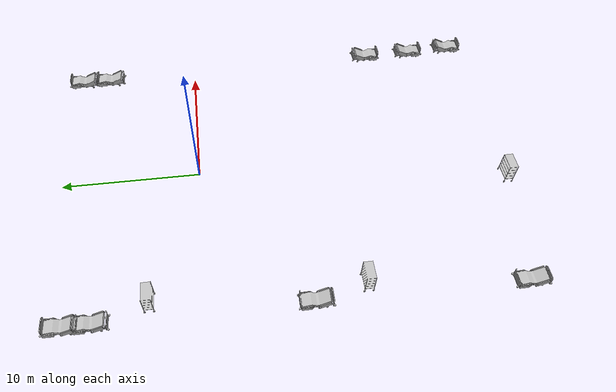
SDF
<sdf version="1.6">
 <world name="hospital">
  <plugin filename="gz-sim-physics-system" name="gz::sim::systems::Physics"/>
  <plugin filename="gz-sim-user-commands-system" name="gz::sim::systems::UserCommands"/>
  <plugin filename="gz-sim-scene-broadcaster-system" name="gz::sim::systems::SceneBroadcaster"/>
  <plugin filename="gz-sim-sensors-system" name="gz::sim::systems::Sensors">
   <render_engine>ogre2</render_engine>
  </plugin>
  <plugin filename="gz-sim-imu-system" name="gz::sim::systems::Imu"/>
  <gravity>0 0 -9.8</gravity>
  <physics default="0" name="default_physics" type="ode">
   <max_step_size>0.001</max_step_size>
   <real_time_factor>1</real_time_factor>
   <real_time_update_rate>1000</real_time_update_rate>
  </physics>
  <model name="CGMClassic_1">
   <include><uri>model://CGMClassic</uri></include>
   <pose>11.1777 -18.4129 0 0 0 -1.5656</pose>
  </model>
  <model name="CGMClassic_2">
   <include><uri>model://CGMClassic</uri></include>
   <pose>11.1179 -14.6493 0 0 0 -1.5656</pose>
  </model>
  <model name="CGMClassic_3">
   <include><uri>model://CGMClassic</uri></include>
   <pose>-11.2304 -21.1134 0 0 -0 1.56641</pose>
  </model>
  <model name="CGMClassic_4">
   <include><uri>model://CGMClassic</uri></include>
   <pose>-11.0878 -7.00992 0 0 -0 1.56296</pose>
  </model>
  <model name="CGMClassic_5">
   <include><uri>model://CGMClassic</uri></include>
   <pose>-11.0106 8.9505 -0.008203 0.0004 -0.035019 1.56285</pose>
  </model>
  <model name="CGMClassic_6">
   <include><uri>model://CGMClassic</uri></include>
   <pose>-11.025 7.10335 0 0 -0.035021 1.57427</pose>
  </model>
  <model name="StorageRack_2">
   <include><uri>model://StorageRack</uri></include>
   <pose>-2.69866 -22.4178 -0 0 -0 0</pose>
  </model>
  <model name="CGMClassic_7">
   <include><uri>model://CGMClassic</uri></include>
   <pose>10.6166 9.06291 -0.008203 0.0004 -0.035019 1.56285</pose>
  </model>
  <model name="CGMClassic_8">
   <include><uri>model://CGMClassic</uri></include>
   <pose>10.6006 6.90956 -0.008203 0.0004 -0.035019 1.56285</pose>
  </model>
  <model name="CGMClassic_9">
   <include><uri>model://CGMClassic</uri></include>
   <pose>11.3613 -21.8867 0 0 0 -1.5656</pose>
  </model>
  <model name="StorageRack_3">
   <include><uri>model://StorageRack</uri></include>
   <pose>-10.1178 -10.4694 -0 0 -0 0</pose>
  </model>
  <model name="StorageRack_4">
   <include><uri>model://StorageRack</uri></include>
   <pose>-9.91557 3.5644 -8e-06 0 3e-06 -0.000273</pose>
  </model>
  <light name="ceiling_light_0" type="spot">
   <pose>-0.194533 13.8034 2.8 0 -0 0</pose>
   <diffuse>0.494118 0.494118 0.494118 1</diffuse>
   <specular>0.0941176 0.0941176 0.0941176 1</specular>
   <direction>0 0 -1</direction>
   <attenuation>
    <range>20</range>
    <constant>0.8</constant>
    <linear>0.1</linear>
    <quadratic>0.001</quadratic>
   </attenuation>
   <cast_shadows>0</cast_shadows>
   <spot><inner_angle>1.0</inner_angle><outer_angle>2.5</outer_angle><falloff>1</falloff></spot>
  </light>
  <light name="ceiling_light_1" type="spot">
   <pose>6.30005 8.9551 2.8 0 -0 0</pose>
   <diffuse>0.494118 0.494118 0.494118 1</diffuse>
   <specular>0.0941176 0.0941176 0.0941176 1</specular>
   <direction>0 0 -1</direction>
   <attenuation>
    <range>20</range>
    <constant>0.8</constant>
    <linear>0.1</linear>
    <quadratic>0.001</quadratic>
   </attenuation>
   <cast_shadows>0</cast_shadows>
   <spot><inner_angle>1.0</inner_angle><outer_angle>2.5</outer_angle><falloff>1</falloff></spot>
  </light>
  <light name="ceiling_light_2" type="spot">
   <pose>0.212387 2.1354 2.8 0 -0 0</pose>
   <diffuse>0.494118 0.494118 0.494118 1</diffuse>
   <specular>0.0941176 0.0941176 0.0941176 1</specular>
   <direction>0 0 -1</direction>
   <attenuation>
    <range>20</range>
    <constant>0.8</constant>
    <linear>0.1</linear>
    <quadratic>0.001</quadratic>
   </attenuation>
   <cast_shadows>0</cast_shadows>
   <spot><inner_angle>1.0</inner_angle><outer_angle>2.5</outer_angle><falloff>1</falloff></spot>
  </light>
  <light name="ceiling_light_3" type="spot">
   <pose>-5.81057 7.18327 2.8 0 -0 0</pose>
   <diffuse>0.494118 0.494118 0.494118 1</diffuse>
   <specular>0.0941176 0.0941176 0.0941176 1</specular>
   <direction>0 0 -1</direction>
   <attenuation>
    <range>20</range>
    <constant>0.8</constant>
    <linear>0.1</linear>
    <quadratic>0.001</quadratic>
   </attenuation>
   <cast_shadows>0</cast_shadows>
   <spot><inner_angle>1.0</inner_angle><outer_angle>2.5</outer_angle><falloff>1</falloff></spot>
  </light>
  <light name="ceiling_light_4" type="spot">
   <pose>-4.54396 -3.67312 2.8 0 -0 0</pose>
   <diffuse>0.494118 0.494118 0.494118 1</diffuse>
   <specular>0.0941176 0.0941176 0.0941176 1</specular>
   <direction>0 0 -1</direction>
   <attenuation>
    <range>20</range>
    <constant>0.8</constant>
    <linear>0.1</linear>
    <quadratic>0.001</quadratic>
   </attenuation>
   <cast_shadows>0</cast_shadows>
   <spot><inner_angle>1.0</inner_angle><outer_angle>2.5</outer_angle><falloff>1</falloff></spot>
  </light>
  <light name="ceiling_light_5" type="spot">
   <pose>-4.37087 -14.4782 2.8 0 -0 0</pose>
   <diffuse>0.494118 0.494118 0.494118 1</diffuse>
   <specular>0.0941176 0.0941176 0.0941176 1</specular>
   <direction>0 0 -1</direction>
   <attenuation>
    <range>20</range>
    <constant>0.8</constant>
    <linear>0.1</linear>
    <quadratic>0.001</quadratic>
   </attenuation>
   <cast_shadows>0</cast_shadows>
   <spot><inner_angle>1.0</inner_angle><outer_angle>2.5</outer_angle><falloff>1</falloff></spot>
  </light>
  <light name="ceiling_light_6" type="spot">
   <pose>-4.39457 -24.5382 2.8 0 -0 0</pose>
   <diffuse>0.494118 0.494118 0.494118 1</diffuse>
   <specular>0.0941176 0.0941176 0.0941176 1</specular>
   <direction>0 0 -1</direction>
   <attenuation>
    <range>20</range>
    <constant>0.8</constant>
    <linear>0.1</linear>
    <quadratic>0.001</quadratic>
   </attenuation>
   <cast_shadows>0</cast_shadows>
   <spot><inner_angle>1.0</inner_angle><outer_angle>2.5</outer_angle><falloff>1</falloff></spot>
  </light>
  <light name="ceiling_light_7" type="spot">
   <pose>-4.89858 -33.5301 2.8 0 -0 0</pose>
   <diffuse>0.494118 0.494118 0.494118 1</diffuse>
   <specular>0.0941176 0.0941176 0.0941176 1</specular>
   <direction>0 0 -1</direction>
   <attenuation>
    <range>20</range>
    <constant>0.8</constant>
    <linear>0.1</linear>
    <quadratic>0.001</quadratic>
   </attenuation>
   <cast_shadows>0</cast_shadows>
   <spot><inner_angle>1.0</inner_angle><outer_angle>2.5</outer_angle><falloff>1</falloff></spot>
  </light>
  <light name="ceiling_light_8" type="spot">
   <pose>4.63967 -24.4587 2.8 0 -0 0</pose>
   <diffuse>0.494118 0.494118 0.494118 1</diffuse>
   <specular>0.0941176 0.0941176 0.0941176 1</specular>
   <direction>0 0 -1</direction>
   <attenuation>
    <range>20</range>
    <constant>0.8</constant>
    <linear>0.1</linear>
    <quadratic>0.001</quadratic>
   </attenuation>
   <cast_shadows>0</cast_shadows>
   <spot><inner_angle>1.0</inner_angle><outer_angle>2.5</outer_angle><falloff>1</falloff></spot>
  </light>
  <light name="ceiling_light_9" type="spot">
   <pose>4.92633 -14.3923 2.8 0 -0 0</pose>
   <diffuse>0.494118 0.494118 0.494118 1</diffuse>
   <specular>0.0941176 0.0941176 0.0941176 1</specular>
   <direction>0 0 -1</direction>
   <attenuation>
    <range>20</range>
    <constant>0.8</constant>
    <linear>0.1</linear>
    <quadratic>0.001</quadratic>
   </attenuation>
   <cast_shadows>0</cast_shadows>
   <spot><inner_angle>1.0</inner_angle><outer_angle>2.5</outer_angle><falloff>1</falloff></spot>
  </light>
  <light name="ceiling_light_10" type="spot">
   <pose>4.7009 -3.77715 2.8 0 -0 0</pose>
   <diffuse>0.494118 0.494118 0.494118 1</diffuse>
   <specular>0.0941176 0.0941176 0.0941176 1</specular>
   <direction>0 0 -1</direction>
   <attenuation>
    <range>20</range>
    <constant>0.8</constant>
    <linear>0.1</linear>
    <quadratic>0.001</quadratic>
   </attenuation>
   <cast_shadows>0</cast_shadows>
   <spot><inner_angle>1.0</inner_angle><outer_angle>2.5</outer_angle><falloff>1</falloff></spot>
  </light>
  <light name="ceiling_light_11" type="spot">
   <pose>-9.02467 14.516 2.8 0 -0 0</pose>
   <diffuse>0.494118 0.494118 0.494118 1</diffuse>
   <specular>0.0941176 0.0941176 0.0941176 1</specular>
   <direction>0 0 -1</direction>
   <attenuation>
    <range>20</range>
    <constant>0.8</constant>
    <linear>0.1</linear>
    <quadratic>0.001</quadratic>
   </attenuation>
   <cast_shadows>0</cast_shadows>
   <spot><inner_angle>1.0</inner_angle><outer_angle>2.5</outer_angle><falloff>1</falloff></spot>
  </light>
  <light name="ceiling_light_12" type="spot">
   <pose>9.12495 14.4234 2.8 0 -0 0</pose>
   <diffuse>0.494118 0.494118 0.494118 1</diffuse>
   <specular>0.0941176 0.0941176 0.0941176 1</specular>
   <direction>0 0 -1</direction>
   <attenuation>
    <range>20</range>
    <constant>0.8</constant>
    <linear>0.1</linear>
    <quadratic>0.001</quadratic>
   </attenuation>
   <cast_shadows>0</cast_shadows>
   <spot><inner_angle>1.0</inner_angle><outer_angle>2.5</outer_angle><falloff>1</falloff></spot>
  </light>
  <light name="ceiling_light_13" type="spot">
   <pose>9.49822 -5.56304 2.8 0 -0 0</pose>
   <diffuse>0.494118 0.494118 0.494118 1</diffuse>
   <specular>0.0941176 0.0941176 0.0941176 1</specular>
   <direction>0 0 -1</direction>
   <attenuation>
    <range>20</range>
    <constant>0.8</constant>
    <linear>0.1</linear>
    <quadratic>0.001</quadratic>
   </attenuation>
   <cast_shadows>0</cast_shadows>
   <spot><inner_angle>1.0</inner_angle><outer_angle>2.5</outer_angle><falloff>1</falloff></spot>
  </light>
  <light name="ceiling_light_14" type="spot">
   <pose>-9.46806 -4.74662 2.8 0 -0 0</pose>
   <diffuse>0.494118 0.494118 0.494118 1</diffuse>
   <specular>0.0941176 0.0941176 0.0941176 1</specular>
   <direction>0 0 -1</direction>
   <attenuation>
    <range>20</range>
    <constant>0.8</constant>
    <linear>0.1</linear>
    <quadratic>0.001</quadratic>
   </attenuation>
   <cast_shadows>0</cast_shadows>
   <spot><inner_angle>1.0</inner_angle><outer_angle>2.5</outer_angle><falloff>1</falloff></spot>
  </light>
  <light name="ceiling_light_15" type="spot">
   <pose>-9.46885 -19.0778 2.8 0 -0 0</pose>
   <diffuse>0.494118 0.494118 0.494118 1</diffuse>
   <specular>0.0901961 0.0901961 0.0901961 1</specular>
   <direction>0 0 -1</direction>
   <attenuation>
    <range>20</range>
    <constant>0.8</constant>
    <linear>0.1</linear>
    <quadratic>0.001</quadratic>
   </attenuation>
   <cast_shadows>0</cast_shadows>
   <spot><inner_angle>1.0</inner_angle><outer_angle>2.5</outer_angle><falloff>1</falloff></spot>
  </light>
  <light name="ceiling_light_16" type="spot">
   <pose>-9.42207 -28.0708 2.8 0 -0 0</pose>
   <diffuse>0.494118 0.494118 0.494118 1</diffuse>
   <specular>0.0901961 0.0901961 0.0901961 1</specular>
   <direction>0 0 -1</direction>
   <attenuation>
    <range>20</range>
    <constant>0.8</constant>
    <linear>0.1</linear>
    <quadratic>0.001</quadratic>
   </attenuation>
   <cast_shadows>0</cast_shadows>
   <spot><inner_angle>1.0</inner_angle><outer_angle>2.5</outer_angle><falloff>1</falloff></spot>
  </light>
  <light name="ceiling_light_17" type="spot">
   <pose>1.66302 -11.4026 2.8 0 -0 0</pose>
   <diffuse>0.494118 0.494118 0.494118 1</diffuse>
   <specular>0.0901961 0.0901961 0.0901961 1</specular>
   <direction>0 0 -1</direction>
   <attenuation>
    <range>20</range>
    <constant>0.8</constant>
    <linear>0.1</linear>
    <quadratic>0.001</quadratic>
   </attenuation>
   <cast_shadows>0</cast_shadows>
   <spot><inner_angle>1.0</inner_angle><outer_angle>2.5</outer_angle><falloff>1</falloff></spot>
  </light>
  <light name="ceiling_light_18" type="spot">
   <pose>-1.64839 -19.4418 2.8 0 -0 0</pose>
   <diffuse>0.494118 0.494118 0.494118 1</diffuse>
   <specular>0.0901961 0.0901961 0.0901961 1</specular>
   <direction>0 0 -1</direction>
   <attenuation>
    <range>20</range>
    <constant>0.8</constant>
    <linear>0.1</linear>
    <quadratic>0.001</quadratic>
   </attenuation>
   <cast_shadows>0</cast_shadows>
   <spot><inner_angle>1.0</inner_angle><outer_angle>2.5</outer_angle><falloff>1</falloff></spot>
  </light>
  <light name="ceiling_light_19" type="spot">
   <pose>1.85793 -19.3856 2.8 0 -0 0</pose>
   <diffuse>0.494118 0.494118 0.494118 1</diffuse>
   <specular>0.0901961 0.0901961 0.0901961 1</specular>
   <direction>0 0 -1</direction>
   <attenuation>
    <range>20</range>
    <constant>0.8</constant>
    <linear>0.1</linear>
    <quadratic>0.001</quadratic>
   </attenuation>
   <cast_shadows>0</cast_shadows>
   <spot><inner_angle>1.0</inner_angle><outer_angle>2.5</outer_angle><falloff>1</falloff></spot>
  </light>
  <light name="ceiling_light_20" type="spot">
   <pose>-3.74086 -4.44142 2.8 0 -0 0</pose>
   <diffuse>0.494118 0.494118 0.494118 1</diffuse>
   <specular>0.0901961 0.0901961 0.0901961 1</specular>
   <direction>0 0 -1</direction>
   <attenuation>
    <range>20</range>
    <constant>0.8</constant>
    <linear>0.1</linear>
    <quadratic>0.001</quadratic>
   </attenuation>
   <cast_shadows>0</cast_shadows>
   <spot><inner_angle>1.0</inner_angle><outer_angle>2.5</outer_angle><falloff>1</falloff></spot>
  </light>
  <light name="ceiling_light_21" type="spot">
   <pose>-1.7167 -11.3151 2.8 0 -0 0</pose>
   <diffuse>0.494118 0.494118 0.494118 1</diffuse>
   <specular>0.0901961 0.0901961 0.0901961 1</specular>
   <direction>0 0 -1</direction>
   <attenuation>
    <range>20</range>
    <constant>0.8</constant>
    <linear>0.1</linear>
    <quadratic>0.001</quadratic>
   </attenuation>
   <cast_shadows>0</cast_shadows>
   <spot><inner_angle>1.0</inner_angle><outer_angle>2.5</outer_angle><falloff>1</falloff></spot>
  </light>
  <light name="ceiling_light_22" type="spot">
   <pose>-9.60933 -14.3792 2.8 0 -0 0</pose>
   <diffuse>0.494118 0.494118 0.494118 1</diffuse>
   <specular>0.0901961 0.0901961 0.0901961 1</specular>
   <direction>0 0 -1</direction>
   <attenuation>
    <range>20</range>
    <constant>0.8</constant>
    <linear>0.1</linear>
    <quadratic>0.001</quadratic>
   </attenuation>
   <cast_shadows>0</cast_shadows>
   <spot><inner_angle>1.0</inner_angle><outer_angle>2.5</outer_angle><falloff>1</falloff></spot>
  </light>
  <light name="ceiling_light_23" type="spot">
   <pose>-8.89647 0.199867 2.8 0 -0 0</pose>
   <diffuse>0.494118 0.494118 0.494118 1</diffuse>
   <specular>0.0901961 0.0901961 0.0901961 1</specular>
   <direction>0 0 -1</direction>
   <attenuation>
    <range>20</range>
    <constant>0.8</constant>
    <linear>0.1</linear>
    <quadratic>0.001</quadratic>
   </attenuation>
   <cast_shadows>0</cast_shadows>
   <spot><inner_angle>1.0</inner_angle><outer_angle>2.5</outer_angle><falloff>1</falloff></spot>
  </light>
  <light name="ceiling_light_24" type="spot">
   <pose>8.80325 1.99908 2.8 0 -0 0</pose>
   <diffuse>0.494118 0.494118 0.494118 1</diffuse>
   <specular>0.0901961 0.0901961 0.0901961 1</specular>
   <direction>0 0 -1</direction>
   <attenuation>
    <range>20</range>
    <constant>0.8</constant>
    <linear>0.1</linear>
    <quadratic>0.001</quadratic>
   </attenuation>
   <cast_shadows>0</cast_shadows>
   <spot><inner_angle>1.0</inner_angle><outer_angle>2.5</outer_angle><falloff>1</falloff></spot>
  </light>
  <light name="ceiling_light_25" type="spot">
   <pose>10.6153 10.2443 2.8 0 -0 0</pose>
   <diffuse>0.494118 0.494118 0.494118 1</diffuse>
   <specular>0.0941176 0.0941176 0.0941176 1</specular>
   <direction>0 0 -1</direction>
   <attenuation>
    <range>20</range>
    <constant>0.8</constant>
    <linear>0.1</linear>
    <quadratic>0.001</quadratic>
   </attenuation>
   <cast_shadows>0</cast_shadows>
   <spot><inner_angle>1.0</inner_angle><outer_angle>2.5</outer_angle><falloff>1</falloff></spot>
  </light>
  <light name="ceiling_light_26" type="spot">
   <pose>10.7071 5.95677 2.8 0 -0 0</pose>
   <diffuse>0.494118 0.494118 0.494118 1</diffuse>
   <specular>0.0941176 0.0941176 0.0941176 1</specular>
   <direction>0 0 -1</direction>
   <attenuation>
    <range>20</range>
    <constant>0.8</constant>
    <linear>0.1</linear>
    <quadratic>0.001</quadratic>
   </attenuation>
   <cast_shadows>0</cast_shadows>
   <spot><inner_angle>1.0</inner_angle><outer_angle>2.5</outer_angle><falloff>1</falloff></spot>
  </light>
  <light name="ceiling_light_27" type="spot">
   <pose>-10.6266 10.4097 2.8 0 -0 0</pose>
   <diffuse>0.494118 0.494118 0.494118 1</diffuse>
   <specular>0.0941176 0.0941176 0.0941176 1</specular>
   <direction>0 0 -1</direction>
   <attenuation>
    <range>20</range>
    <constant>0.8</constant>
    <linear>0.1</linear>
    <quadratic>0.001</quadratic>
   </attenuation>
   <cast_shadows>0</cast_shadows>
   <spot><inner_angle>1.0</inner_angle><outer_angle>2.5</outer_angle><falloff>1</falloff></spot>
  </light>
  <light name="ceiling_light_28" type="spot">
   <pose>-10.7712 6.05323 2.8 0 -0 0</pose>
   <diffuse>0.494118 0.494118 0.494118 1</diffuse>
   <specular>0.0941176 0.0941176 0.0941176 1</specular>
   <direction>0 0 -1</direction>
   <attenuation>
    <range>20</range>
    <constant>0.8</constant>
    <linear>0.1</linear>
    <quadratic>0.001</quadratic>
   </attenuation>
   <cast_shadows>0</cast_shadows>
   <spot><inner_angle>1.0</inner_angle><outer_angle>2.5</outer_angle><falloff>1</falloff></spot>
  </light>
  <light name="ceiling_light_29" type="spot">
   <pose>-9.64585 -30.5079 2.8 0 -0 0</pose>
   <diffuse>0.494118 0.494118 0.494118 1</diffuse>
   <specular>0.0941176 0.0941176 0.0941176 1</specular>
   <direction>0 0 -1</direction>
   <attenuation>
    <range>20</range>
    <constant>0.8</constant>
    <linear>0.1</linear>
    <quadratic>0.001</quadratic>
   </attenuation>
   <cast_shadows>0</cast_shadows>
   <spot><inner_angle>1.0</inner_angle><outer_angle>2.5</outer_angle><falloff>1</falloff></spot>
  </light>
  <light name="ceiling_light_30" type="spot">
   <pose>-11.9169 -24.6051 2.8 0 -0 0</pose>
   <diffuse>0.494118 0.494118 0.494118 1</diffuse>
   <specular>0.0941176 0.0941176 0.0941176 1</specular>
   <direction>0 0 -1</direction>
   <attenuation>
    <range>20</range>
    <constant>0.8</constant>
    <linear>0.1</linear>
    <quadratic>0.001</quadratic>
   </attenuation>
   <cast_shadows>0</cast_shadows>
   <spot><inner_angle>1.0</inner_angle><outer_angle>2.5</outer_angle><falloff>1</falloff></spot>
  </light>
  <light name="ceiling_light_31" type="spot">
   <pose>-4.29701 11.4852 2.8 0 -0 0</pose>
   <diffuse>0.494118 0.494118 0.494118 1</diffuse>
   <specular>0.0901961 0.0901961 0.0901961 1</specular>
   <direction>0 0 -1</direction>
   <attenuation>
    <range>20</range>
    <constant>0.8</constant>
    <linear>0.1</linear>
    <quadratic>0.001</quadratic>
   </attenuation>
   <cast_shadows>0</cast_shadows>
   <spot><inner_angle>1.0</inner_angle><outer_angle>2.5</outer_angle><falloff>1</falloff></spot>
  </light>
  <light name="ceiling_light_32" type="spot">
   <pose>3.41329 12.0406 2.8 0 -0 0</pose>
   <diffuse>0.494118 0.494118 0.494118 1</diffuse>
   <specular>0.0901961 0.0901961 0.0901961 1</specular>
   <direction>0 0 -1</direction>
   <attenuation>
    <range>20</range>
    <constant>0.8</constant>
    <linear>0.1</linear>
    <quadratic>0.001</quadratic>
   </attenuation>
   <cast_shadows>0</cast_shadows>
   <spot><inner_angle>1.0</inner_angle><outer_angle>2.5</outer_angle><falloff>1</falloff></spot>
  </light>
  <light name="ceiling_light_33" type="spot">
   <pose>-0.181496 7.28878 2.8 0 -0 0</pose>
   <diffuse>0.494118 0.494118 0.494118 1</diffuse>
   <specular>0.0901961 0.0901961 0.0901961 1</specular>
   <direction>0 0 -1</direction>
   <attenuation>
    <range>20</range>
    <constant>0.8</constant>
    <linear>0.1</linear>
    <quadratic>0.001</quadratic>
   </attenuation>
   <cast_shadows>0</cast_shadows>
   <spot><inner_angle>1.0</inner_angle><outer_angle>2.5</outer_angle><falloff>1</falloff></spot>
  </light>
 </world>
</sdf>

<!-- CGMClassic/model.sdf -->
<sdf version="1.6">
  <model name="CGMClassic">
   <static>true</static>
    <link name="body">
      <pose>0 0 0 0 0 0</pose>

      <visual name="visual">
        <geometry>
          <mesh>
            <uri>model://CGMClassic/meshes/CGMClassic.obj</uri>
            <scale>0.01 0.01 0.01</scale>
          </mesh>
        </geometry>
      </visual>

      <collision name="collision">
        <geometry>
          <mesh>
            <uri>model://CGMClassic/meshes/CGMClassic.obj</uri>
            <scale>0.01 0.01 0.01</scale>
          </mesh>
        </geometry>
      </collision>

    </link>
  </model>
</sdf>

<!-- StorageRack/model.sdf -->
<sdf version="1.5">
  <model name="StorageRack">
    <link name="link">
      <pose>0 0 0 0 0 0</pose>

        <visual name="visual">
          <geometry>
            <mesh><uri>model://StorageRack/meshes/StorageRack.obj</uri></mesh>
          </geometry>
          <plugin filename="gz-sim-label-system" name="gz::sim::systems::Label">
          <label>97</label>
        </plugin>
        </visual>

        <collision name="collision">
          <geometry>
            <mesh><uri>model://StorageRack/meshes/StorageRack.obj</uri></mesh>
          </geometry>
        </collision>

    </link>
  </model>
</sdf>
